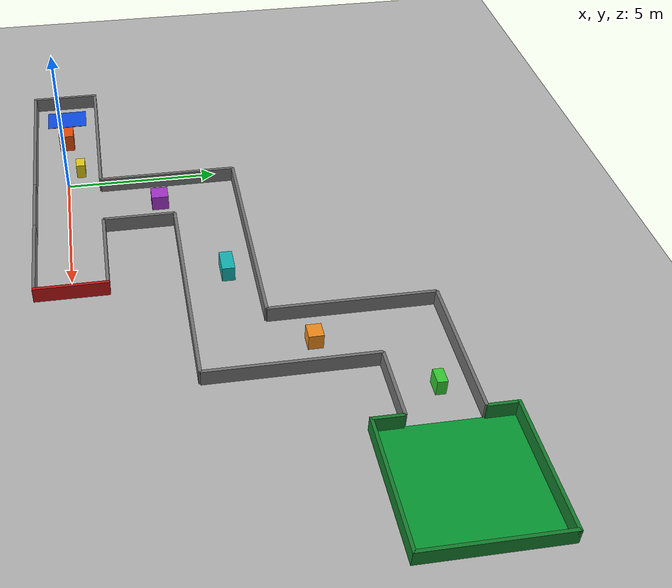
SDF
<?xml version="1.0" encoding="UTF-8"?>
<sdf version="1.10">
  <world name="sumo_maze_world">
    <physics name="1ms" type="ignored">
      <max_step_size>0.001</max_step_size>
      <real_time_factor>1.0</real_time_factor>
      <real_time_update_rate>1000</real_time_update_rate>
    </physics>
    <plugin filename="gz-sim-physics-system" name="gz::sim::systems::Physics"/>
    <plugin filename="gz-sim-user-commands-system" name="gz::sim::systems::UserCommands"/>
    <plugin filename="gz-sim-scene-broadcaster-system" name="gz::sim::systems::SceneBroadcaster"/>
    <plugin filename="gz-sim-contact-system" name="gz::sim::systems::Contact"/>
    <plugin
      filename="gz-sim-sensors-system"
      name="gz::sim::systems::Sensors">
      <render_engine>ogre2</render_engine>
    </plugin>
    <plugin
      filename="gz-sim-imu-system"
      name="gz::sim::systems::Imu">
    </plugin>
    <gravity>0 0 -9.8</gravity>
    <scene>
      <ambient>0.4 0.4 0.4 1</ambient>
      <background>0.7 0.7 0.7 1</background>
      <shadows>true</shadows>
    </scene>
    <model name="ground_plane">
      <static>true</static>
      <link name="link">
        <collision name="collision">
          <geometry>
            <plane>
              <normal>0 0 1</normal>
              <size>50 40</size>
            </plane>
          </geometry>
        </collision>
        <visual name="visual">
          <geometry>
            <plane>
              <normal>0 0 1</normal>
              <size>50 40</size>
            </plane>
          </geometry>
          <material>
            <ambient>0.7 0.7 0.7 1</ambient>
            <diffuse>0.7 0.7 0.7 1</diffuse>
            <specular>0.1 0.1 0.1 1</specular>
          </material>
        </visual>
      </link>
    </model>
    <model name="start_marker">
      <static>true</static>
      <pose>-4.25 0 0.006 0 0 0</pose>
      <link name="link">
        <visual name="visual">
          <geometry>
            <box>
              <size>1.0 1.4 0.01</size>
            </box>
          </geometry>
          <material>
            <ambient>0.05 0.3 0.9 1</ambient>
            <diffuse>0.05 0.3 0.9 1</diffuse>
            <specular>0.1 0.1 0.1 1</specular>
          </material>
        </visual>
      </link>
    </model>
    <model name="start_wall_upper">
      <static>true</static>
      <pose>-2.3 1.1 0.25 0 0 0</pose>
      <link name="link">
        <collision name="collision">
          <geometry>
            <box>
              <size>5.4 0.1 0.5</size>
            </box>
          </geometry>
        </collision>
        <visual name="visual">
          <geometry>
            <box>
              <size>5.4 0.1 0.5</size>
            </box>
          </geometry>
          <material>
            <ambient>0.45 0.45 0.45 1</ambient>
            <diffuse>0.45 0.45 0.45 1</diffuse>
            <specular>0.1 0.1 0.1 1</specular>
          </material>
        </visual>
      </link>
    </model>
    <model name="start_wall_lower">
      <static>true</static>
      <pose>-2.3 -1.1 0.25 0 0 0</pose>
      <link name="link">
        <collision name="collision">
          <geometry>
            <box>
              <size>5.4 0.1 0.5</size>
            </box>
          </geometry>
        </collision>
        <visual name="visual">
          <geometry>
            <box>
              <size>5.4 0.1 0.5</size>
            </box>
          </geometry>
          <material>
            <ambient>0.45 0.45 0.45 1</ambient>
            <diffuse>0.45 0.45 0.45 1</diffuse>
            <specular>0.1 0.1 0.1 1</specular>
          </material>
        </visual>
      </link>
    </model>
    <model name="start_back_wall">
      <static>true</static>
      <pose>-5.05 0 0.25 0 0 0</pose>
      <link name="link">
        <collision name="collision">
          <geometry>
            <box>
              <size>0.1 2.3 0.5</size>
            </box>
          </geometry>
        </collision>
        <visual name="visual">
          <geometry>
            <box>
              <size>0.1 2.3 0.5</size>
            </box>
          </geometry>
          <material>
            <ambient>0.45 0.45 0.45 1</ambient>
            <diffuse>0.45 0.45 0.45 1</diffuse>
            <specular>0.1 0.1 0.1 1</specular>
          </material>
        </visual>
      </link>
    </model>
    <model name="junction_lower_wall">
      <static>true</static>
      <pose>1.5 -1.1 0.25 0 0 0</pose>
      <link name="link">
        <collision name="collision">
          <geometry>
            <box>
              <size>2.2 0.1 0.5</size>
            </box>
          </geometry>
        </collision>
        <visual name="visual">
          <geometry>
            <box>
              <size>2.2 0.1 0.5</size>
            </box>
          </geometry>
          <material>
            <ambient>0.45 0.45 0.45 1</ambient>
            <diffuse>0.45 0.45 0.45 1</diffuse>
            <specular>0.1 0.1 0.1 1</specular>
          </material>
        </visual>
      </link>
    </model>
    <model name="dead_end_upper_wall">
      <static>true</static>
      <pose>4.1 1.1 0.25 0 0 0</pose>
      <link name="link">
        <collision name="collision">
          <geometry>
            <box>
              <size>3.0 0.1 0.5</size>
            </box>
          </geometry>
        </collision>
        <visual name="visual">
          <geometry>
            <box>
              <size>3.0 0.1 0.5</size>
            </box>
          </geometry>
          <material>
            <ambient>0.45 0.45 0.45 1</ambient>
            <diffuse>0.45 0.45 0.45 1</diffuse>
            <specular>0.1 0.1 0.1 1</specular>
          </material>
        </visual>
      </link>
    </model>
    <model name="dead_end_lower_wall">
      <static>true</static>
      <pose>4.1 -1.1 0.25 0 0 0</pose>
      <link name="link">
        <collision name="collision">
          <geometry>
            <box>
              <size>3.0 0.1 0.5</size>
            </box>
          </geometry>
        </collision>
        <visual name="visual">
          <geometry>
            <box>
              <size>3.0 0.1 0.5</size>
            </box>
          </geometry>
          <material>
            <ambient>0.45 0.45 0.45 1</ambient>
            <diffuse>0.45 0.45 0.45 1</diffuse>
            <specular>0.1 0.1 0.1 1</specular>
          </material>
        </visual>
      </link>
    </model>
    <model name="dead_end_wall">
      <static>true</static>
      <pose>5.65 0 0.25 0 0 0</pose>
      <link name="link">
        <collision name="collision">
          <geometry>
            <box>
              <size>0.1 2.3 0.5</size>
            </box>
          </geometry>
        </collision>
        <visual name="visual">
          <geometry>
            <box>
              <size>0.1 2.3 0.5</size>
            </box>
          </geometry>
          <material>
            <ambient>0.75 0.08 0.08 1</ambient>
            <diffuse>0.75 0.08 0.08 1</diffuse>
            <specular>0.1 0.1 0.1 1</specular>
          </material>
        </visual>
      </link>
    </model>
    <model name="north_path_left_wall">
      <static>true</static>
      <pose>0.4 3.35 0.25 0 0 0</pose>
      <link name="link">
        <collision name="collision">
          <geometry>
            <box>
              <size>0.1 4.5 0.5</size>
            </box>
          </geometry>
        </collision>
        <visual name="visual">
          <geometry>
            <box>
              <size>0.1 4.5 0.5</size>
            </box>
          </geometry>
          <material>
            <ambient>0.45 0.45 0.45 1</ambient>
            <diffuse>0.45 0.45 0.45 1</diffuse>
            <specular>0.1 0.1 0.1 1</specular>
          </material>
        </visual>
      </link>
    </model>
    <model name="north_path_right_wall">
      <static>true</static>
      <pose>2.6 2.25 0.25 0 0 0</pose>
      <link name="link">
        <collision name="collision">
          <geometry>
            <box>
              <size>0.1 2.3 0.5</size>
            </box>
          </geometry>
        </collision>
        <visual name="visual">
          <geometry>
            <box>
              <size>0.1 2.3 0.5</size>
            </box>
          </geometry>
          <material>
            <ambient>0.45 0.45 0.45 1</ambient>
            <diffuse>0.45 0.45 0.45 1</diffuse>
            <specular>0.1 0.1 0.1 1</specular>
          </material>
        </visual>
      </link>
    </model>
    <model name="east_corridor_upper_wall">
      <static>true</static>
      <pose>3.95 5.6 0.25 0 0 0</pose>
      <link name="link">
        <collision name="collision">
          <geometry>
            <box>
              <size>7.1 0.1 0.5</size>
            </box>
          </geometry>
        </collision>
        <visual name="visual">
          <geometry>
            <box>
              <size>7.1 0.1 0.5</size>
            </box>
          </geometry>
          <material>
            <ambient>0.45 0.45 0.45 1</ambient>
            <diffuse>0.45 0.45 0.45 1</diffuse>
            <specular>0.1 0.1 0.1 1</specular>
          </material>
        </visual>
      </link>
    </model>
    <model name="east_corridor_lower_wall">
      <static>true</static>
      <pose>6.15 3.4 0.25 0 0 0</pose>
      <link name="link">
        <collision name="collision">
          <geometry>
            <box>
              <size>7.1 0.1 0.5</size>
            </box>
          </geometry>
        </collision>
        <visual name="visual">
          <geometry>
            <box>
              <size>7.1 0.1 0.5</size>
            </box>
          </geometry>
          <material>
            <ambient>0.45 0.45 0.45 1</ambient>
            <diffuse>0.45 0.45 0.45 1</diffuse>
            <specular>0.1 0.1 0.1 1</specular>
          </material>
        </visual>
      </link>
    </model>
    <model name="dogleg_left_wall">
      <static>true</static>
      <pose>7.5 8.15 0.25 0 0 0</pose>
      <link name="link">
        <collision name="collision">
          <geometry>
            <box>
              <size>0.1 5.1 0.5</size>
            </box>
          </geometry>
        </collision>
        <visual name="visual">
          <geometry>
            <box>
              <size>0.1 5.1 0.5</size>
            </box>
          </geometry>
          <material>
            <ambient>0.45 0.45 0.45 1</ambient>
            <diffuse>0.45 0.45 0.45 1</diffuse>
            <specular>0.1 0.1 0.1 1</specular>
          </material>
        </visual>
      </link>
    </model>
    <model name="dogleg_right_wall">
      <static>true</static>
      <pose>9.7 5.95 0.25 0 0 0</pose>
      <link name="link">
        <collision name="collision">
          <geometry>
            <box>
              <size>0.1 5.1 0.5</size>
            </box>
          </geometry>
        </collision>
        <visual name="visual">
          <geometry>
            <box>
              <size>0.1 5.1 0.5</size>
            </box>
          </geometry>
          <material>
            <ambient>0.45 0.45 0.45 1</ambient>
            <diffuse>0.45 0.45 0.45 1</diffuse>
            <specular>0.1 0.1 0.1 1</specular>
          </material>
        </visual>
      </link>
    </model>
    <model name="upper_corridor_upper_wall">
      <static>true</static>
      <pose>9.75 10.7 0.25 0 0 0</pose>
      <link name="link">
        <collision name="collision">
          <geometry>
            <box>
              <size>4.5 0.1 0.5</size>
            </box>
          </geometry>
        </collision>
        <visual name="visual">
          <geometry>
            <box>
              <size>4.5 0.1 0.5</size>
            </box>
          </geometry>
          <material>
            <ambient>0.45 0.45 0.45 1</ambient>
            <diffuse>0.45 0.45 0.45 1</diffuse>
            <specular>0.1 0.1 0.1 1</specular>
          </material>
        </visual>
      </link>
    </model>
    <model name="upper_corridor_lower_wall">
      <static>true</static>
      <pose>10.85 8.5 0.25 0 0 0</pose>
      <link name="link">
        <collision name="collision">
          <geometry>
            <box>
              <size>2.3 0.1 0.5</size>
            </box>
          </geometry>
        </collision>
        <visual name="visual">
          <geometry>
            <box>
              <size>2.3 0.1 0.5</size>
            </box>
          </geometry>
          <material>
            <ambient>0.45 0.45 0.45 1</ambient>
            <diffuse>0.45 0.45 0.45 1</diffuse>
            <specular>0.1 0.1 0.1 1</specular>
          </material>
        </visual>
      </link>
    </model>
    <model name="arena_north_wall">
      <static>true</static>
      <pose>14 11.6 0.25 0 0 0</pose>
      <link name="link">
        <collision name="collision">
          <geometry>
            <box>
              <size>4.1 0.1 0.5</size>
            </box>
          </geometry>
        </collision>
        <visual name="visual">
          <geometry>
            <box>
              <size>4.1 0.1 0.5</size>
            </box>
          </geometry>
          <material>
            <ambient>0.08 0.5 0.18 1</ambient>
            <diffuse>0.08 0.5 0.18 1</diffuse>
            <specular>0.1 0.1 0.1 1</specular>
          </material>
        </visual>
      </link>
    </model>
    <model name="arena_south_wall">
      <static>true</static>
      <pose>14 7.6 0.25 0 0 0</pose>
      <link name="link">
        <collision name="collision">
          <geometry>
            <box>
              <size>4.1 0.1 0.5</size>
            </box>
          </geometry>
        </collision>
        <visual name="visual">
          <geometry>
            <box>
              <size>4.1 0.1 0.5</size>
            </box>
          </geometry>
          <material>
            <ambient>0.08 0.5 0.18 1</ambient>
            <diffuse>0.08 0.5 0.18 1</diffuse>
            <specular>0.1 0.1 0.1 1</specular>
          </material>
        </visual>
      </link>
    </model>
    <model name="arena_east_wall">
      <static>true</static>
      <pose>16 9.6 0.25 0 0 0</pose>
      <link name="link">
        <collision name="collision">
          <geometry>
            <box>
              <size>0.1 4.1 0.5</size>
            </box>
          </geometry>
        </collision>
        <visual name="visual">
          <geometry>
            <box>
              <size>0.1 4.1 0.5</size>
            </box>
          </geometry>
          <material>
            <ambient>0.08 0.5 0.18 1</ambient>
            <diffuse>0.08 0.5 0.18 1</diffuse>
            <specular>0.1 0.1 0.1 1</specular>
          </material>
        </visual>
      </link>
    </model>
    <model name="arena_west_upper_wall">
      <static>true</static>
      <pose>12 11.15 0.25 0 0 0</pose>
      <link name="link">
        <collision name="collision">
          <geometry>
            <box>
              <size>0.1 0.9 0.5</size>
            </box>
          </geometry>
        </collision>
        <visual name="visual">
          <geometry>
            <box>
              <size>0.1 0.9 0.5</size>
            </box>
          </geometry>
          <material>
            <ambient>0.08 0.5 0.18 1</ambient>
            <diffuse>0.08 0.5 0.18 1</diffuse>
            <specular>0.1 0.1 0.1 1</specular>
          </material>
        </visual>
      </link>
    </model>
    <model name="arena_west_lower_wall">
      <static>true</static>
      <pose>12 8.05 0.25 0 0 0</pose>
      <link name="link">
        <collision name="collision">
          <geometry>
            <box>
              <size>0.1 0.9 0.5</size>
            </box>
          </geometry>
        </collision>
        <visual name="visual">
          <geometry>
            <box>
              <size>0.1 0.9 0.5</size>
            </box>
          </geometry>
          <material>
            <ambient>0.08 0.5 0.18 1</ambient>
            <diffuse>0.08 0.5 0.18 1</diffuse>
            <specular>0.1 0.1 0.1 1</specular>
          </material>
        </visual>
      </link>
    </model>
    <model name="center_obstacle">
      <static>true</static>
      <pose>-2.5 0 0.3 0 0 0</pose>
      <link name="link">
        <collision name="collision">
          <geometry>
            <box>
              <size>0.6 0.5 0.6</size>
            </box>
          </geometry>
        </collision>
        <visual name="visual">
          <geometry>
            <box>
              <size>0.6 0.5 0.6</size>
            </box>
          </geometry>
          <material>
            <ambient>0.9 0.3 0.04 1</ambient>
            <diffuse>0.9 0.3 0.04 1</diffuse>
            <specular>0.1 0.1 0.1 1</specular>
          </material>
        </visual>
      </link>
    </model>
    <model name="pre_junction_obstacle">
      <static>true</static>
      <pose>-0.7 0.45 0.25 0 0 0</pose>
      <link name="link">
        <collision name="collision">
          <geometry>
            <box>
              <size>0.45 0.3 0.5</size>
            </box>
          </geometry>
        </collision>
        <visual name="visual">
          <geometry>
            <box>
              <size>0.45 0.3 0.5</size>
            </box>
          </geometry>
          <material>
            <ambient>0.9 0.8 0.08 1</ambient>
            <diffuse>0.9 0.8 0.08 1</diffuse>
            <specular>0.1 0.1 0.1 1</specular>
          </material>
        </visual>
      </link>
    </model>
    <model name="north_path_obstacle">
      <static>true</static>
      <pose>1.45 3.0 0.25 0 0 0</pose>
      <link name="link">
        <collision name="collision">
          <geometry>
            <box>
              <size>0.55 0.55 0.5</size>
            </box>
          </geometry>
        </collision>
        <visual name="visual">
          <geometry>
            <box>
              <size>0.55 0.55 0.5</size>
            </box>
          </geometry>
          <material>
            <ambient>0.65 0.2 0.8 1</ambient>
            <diffuse>0.65 0.2 0.8 1</diffuse>
            <specular>0.1 0.1 0.1 1</specular>
          </material>
        </visual>
      </link>
    </model>
    <model name="east_corridor_obstacle">
      <static>true</static>
      <pose>5.2 4.75 0.25 0 0 0</pose>
      <link name="link">
        <collision name="collision">
          <geometry>
            <box>
              <size>0.8 0.4 0.5</size>
            </box>
          </geometry>
        </collision>
        <visual name="visual">
          <geometry>
            <box>
              <size>0.8 0.4 0.5</size>
            </box>
          </geometry>
          <material>
            <ambient>0.08 0.7 0.7 1</ambient>
            <diffuse>0.08 0.7 0.7 1</diffuse>
            <specular>0.1 0.1 0.1 1</specular>
          </material>
        </visual>
      </link>
    </model>
    <model name="dogleg_obstacle">
      <static>true</static>
      <pose>8.6 6.8 0.25 0 0 0</pose>
      <link name="link">
        <collision name="collision">
          <geometry>
            <box>
              <size>0.5 0.45 0.5</size>
            </box>
          </geometry>
        </collision>
        <visual name="visual">
          <geometry>
            <box>
              <size>0.5 0.45 0.5</size>
            </box>
          </geometry>
          <material>
            <ambient>0.95 0.55 0.1 1</ambient>
            <diffuse>0.95 0.55 0.1 1</diffuse>
            <specular>0.1 0.1 0.1 1</specular>
          </material>
        </visual>
      </link>
    </model>
    <model name="upper_corridor_obstacle">
      <static>true</static>
      <pose>10.8 9.8 0.25 0 0 0</pose>
      <link name="link">
        <collision name="collision">
          <geometry>
            <box>
              <size>0.5 0.3 0.5</size>
            </box>
          </geometry>
        </collision>
        <visual name="visual">
          <geometry>
            <box>
              <size>0.5 0.3 0.5</size>
            </box>
          </geometry>
          <material>
            <ambient>0.2 0.8 0.2 1</ambient>
            <diffuse>0.2 0.8 0.2 1</diffuse>
            <specular>0.1 0.1 0.1 1</specular>
          </material>
        </visual>
      </link>
    </model>
    <model name="sumo_arena_floor">
      <static>true</static>
      <pose>14 9.6 0.006 0 0 0</pose>
      <link name="link">
        <visual name="visual">
          <geometry>
            <box>
              <size>4 4 0.01</size>
            </box>
          </geometry>
          <material>
            <ambient>0.03 0.6 0.2 1</ambient>
            <diffuse>0.03 0.6 0.2 1</diffuse>
            <specular>0.1 0.1 0.1 1</specular>
          </material>
        </visual>
      </link>
    </model>
    <light name="sun" type="directional">
      <pose>0 0 10 0 0 0</pose>
      <cast_shadows>true</cast_shadows>
      <intensity>1.0</intensity>
      <direction>-0.5 0.1 -0.9</direction>
      <diffuse>0.8 0.8 0.8 1</diffuse>
      <specular>0.2 0.2 0.2 1</specular>
      <attenuation>
        <range>1000</range>
        <constant>0.9</constant>
        <linear>0.01</linear>
        <quadratic>0.001</quadratic>
      </attenuation>
    </light>
  </world>
</sdf>
